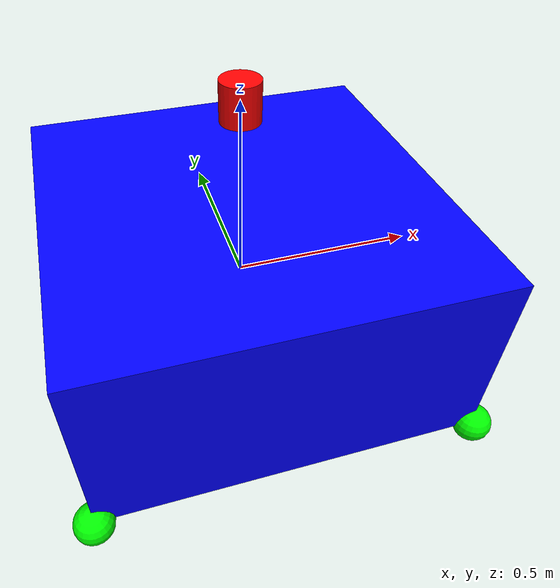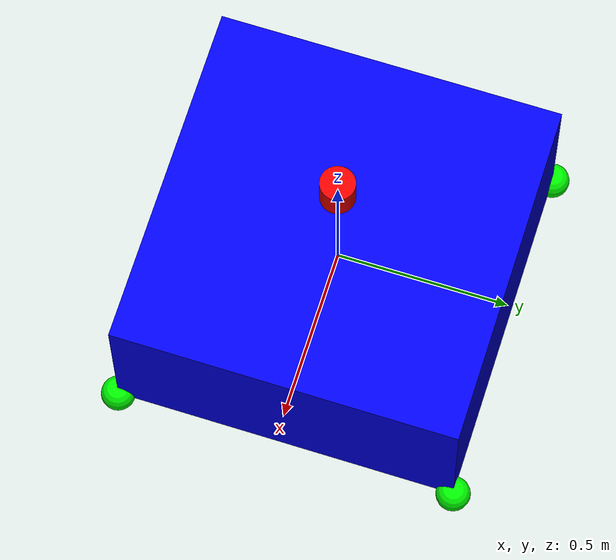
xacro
<?xml version="1.0" ?>
<!-- |    This document was autogenerated by xacro from model.xacro                    | -->
<!-- |    EDITING THIS FILE BY HAND IS NOT RECOMMENDED                                 | -->
<robot name="HolonomicUrdf">
  <link name="base_footprint"/>
  <link name="base_link">
    <inertial>
      <mass value="100"/>
      <origin rpy="0 0 0" xyz="0 0 0"/>
      <inertia ixx="10.416666666666668" ixy="0.0" ixz="0.0" iyy="10.416666666666668" iyz="0.0" izz="16.666666666666668"/>
    </inertial>
    <visual>
      <geometry>
        <box size="1.0 1.0 0.5"/>
      </geometry>
      <material name="blue">
        <color rgba="0.0 0.0 1.0 1.0"/>
      </material>
    </visual>
  </link>
  <joint name="base_joint" type="fixed">
    <parent link="base_footprint"/>
    <child link="base_link"/>
  </joint>
  <link name="wheel_base_link">
    <inertial>
      <mass value="0.01"/>
      <origin rpy="0 0 0" xyz="0 0 0"/>
      <inertia ixx="233333.33333333334" ixy="0.0" ixz="0.0" iyy="233333.33333333334" iyz="0.0" izz="450000.0"/>
    </inertial>
    <visual>
      <geometry>
        <cylinder length="0.1" radius="0.3"/>
      </geometry>
      <material name="red">
        <color rgba="1.0 0.0 0.0 1.0"/>
      </material>
    </visual>
  </link>
  <joint name="wheel_base_joint" type="continuous">
    <parent link="base_link"/>
    <child link="wheel_base_link"/>
    <origin rpy="0 0 0" xyz="0 0 0"/>
    <axis xyz="0 0 1"/>
  </joint>
  <link name="wheel_link">
    <inertial>
      <mass value="1e-07"/>
      <origin rpy="0 0 0" xyz="0 0 0"/>
      <inertia ixx="1.0000083333333336" ixy="0.0" ixz="0.0" iyy="1.0000083333333336" iyz="0.0" izz="2.0000000000000004"/>
    </inertial>
    <visual>
      <geometry>
        <cylinder length="0.001" radius="0.2"/>
      </geometry>
      <material name="red">
        <color rgba="1.0 0.0 0.0 1.0"/>
      </material>
    </visual>
    <collision>
      <geometry>
        <cylinder length="0.001" radius="0.2"/>
      </geometry>
      <origin rpy="0 0 0" xyz="0 0 0"/>
    </collision>
  </link>
  <joint name="wheel_joint" type="continuous">
    <parent link="wheel_base_link"/>
    <child link="wheel_link"/>
    <origin rpy="-1.57 0 0" xyz="0 0 -0.1"/>
    <axis xyz="0 0 1"/>
  </joint>
  <link name="caster1_link">
    <inertial>
      <mass value="0.3"/>
      <origin rpy="0 0 0" xyz="0 0 0"/>
      <inertia ixx="3000000.0" ixy="0.0" ixz="0.0" iyy="3000000.0" iyz="0.0" izz="3000000.0"/>
    </inertial>
    <visual>
      <geometry>
        <sphere radius="0.05"/>
      </geometry>
      <material name="green">
        <color rgba="0.0 1.0 0.0 1.0"/>
      </material>
    </visual>
    <collision>
      <geometry>
        <sphere radius="0.05"/>
      </geometry>
      <origin rpy="0 0 0" xyz="0 0 0"/>
    </collision>
  </link>
  <joint name="caster1_joint" type="fixed">
    <origin rpy="0 0 0" xyz="0.5000000000000001 0.5000000000000001 -0.25"/>
    <parent link="base_link"/>
    <child link="caster1_link"/>
  </joint>
  <link name="caster2_link">
    <inertial>
      <mass value="0.3"/>
      <origin rpy="0 0 0" xyz="0 0 0"/>
      <inertia ixx="3000000.0" ixy="0.0" ixz="0.0" iyy="3000000.0" iyz="0.0" izz="3000000.0"/>
    </inertial>
    <visual>
      <geometry>
        <sphere radius="0.05"/>
      </geometry>
      <material name="green">
        <color rgba="0.0 1.0 0.0 1.0"/>
      </material>
    </visual>
    <collision>
      <geometry>
        <sphere radius="0.05"/>
      </geometry>
      <origin rpy="0 0 0" xyz="0 0 0"/>
    </collision>
  </link>
  <joint name="caster2_joint" type="fixed">
    <origin rpy="0 0 0" xyz="-0.5000000000000001 0.5000000000000001 -0.25"/>
    <parent link="base_link"/>
    <child link="caster2_link"/>
  </joint>
  <link name="caster3_link">
    <inertial>
      <mass value="0.3"/>
      <origin rpy="0 0 0" xyz="0 0 0"/>
      <inertia ixx="3000000.0" ixy="0.0" ixz="0.0" iyy="3000000.0" iyz="0.0" izz="3000000.0"/>
    </inertial>
    <visual>
      <geometry>
        <sphere radius="0.05"/>
      </geometry>
      <material name="green">
        <color rgba="0.0 1.0 0.0 1.0"/>
      </material>
    </visual>
    <collision>
      <geometry>
        <sphere radius="0.05"/>
      </geometry>
      <origin rpy="0 0 0" xyz="0 0 0"/>
    </collision>
  </link>
  <joint name="caster3_joint" type="fixed">
    <origin rpy="0 0 0" xyz="-0.5000000000000001 -0.5000000000000001 -0.25"/>
    <parent link="base_link"/>
    <child link="caster3_link"/>
  </joint>
  <link name="caster4_link">
    <inertial>
      <mass value="0.3"/>
      <origin rpy="0 0 0" xyz="0 0 0"/>
      <inertia ixx="3000000.0" ixy="0.0" ixz="0.0" iyy="3000000.0" iyz="0.0" izz="3000000.0"/>
    </inertial>
    <visual>
      <geometry>
        <sphere radius="0.05"/>
      </geometry>
      <material name="green">
        <color rgba="0.0 1.0 0.0 1.0"/>
      </material>
    </visual>
    <collision>
      <geometry>
        <sphere radius="0.05"/>
      </geometry>
      <origin rpy="0 0 0" xyz="0 0 0"/>
    </collision>
  </link>
  <joint name="caster4_joint" type="fixed">
    <origin rpy="0 0 0" xyz="0.5000000000000001 -0.5000000000000001 -0.25"/>
    <parent link="base_link"/>
    <child link="caster4_link"/>
  </joint>
  <link name="base_lidar_link">
    <inertial>
      <mass value="0.01"/>
      <origin rpy="0 0 0" xyz="0 0 0"/>
      <inertia ixx="1.4583333333333337e-05" ixy="0.0" ixz="0.0" iyy="1.4583333333333337e-05" iyz="0.0" izz="1.2500000000000002e-05"/>
    </inertial>
    <visual>
      <geometry>
        <cylinder length="0.1" radius="0.05"/>
      </geometry>
      <material name="red">
        <color rgba="1.0 0.0 0.0 1.0"/>
      </material>
    </visual>
  </link>
  <joint name="base_lidar_joint" type="fixed">
    <parent link="base_link"/>
    <child link="base_lidar_link"/>
    <origin rpy="0 0 0" xyz="0 0 0.5"/>
  </joint>
  <gazebo reference="base_lidar_link">
    <sensor name="gpu_lidar" type="gpu_lidar">
      <topic>scan</topic>
      <ignition_frame_id>base_footprint</ignition_frame_id>
      <update_rate>10</update_rate>
      <ray>
        <scan>
          <horizontal>
            <samples>270</samples>
            <resolution>1</resolution>
            <min_angle>2.356194490192345</min_angle>
            <max_angle>-2.356194490192345</max_angle>
          </horizontal>
        </scan>
        <range>
          <min>0.1</min>
          <max>20</max>
        </range>
      </ray>
      <always_on>true</always_on>
      <visualize>true</visualize>
    </sensor>
  </gazebo>
  <gazebo>
    <!-- Global odometer -->
    <plugin filename="ignition-gazebo-odometry-publisher-system" name="ignition::gazebo::systems::OdometryPublisher">
      <odom_publish_frequency>50</odom_publish_frequency>
      <odom_topic>/odom</odom_topic>
      <odom_frame>odom</odom_frame>
      <robot_base_frame>base_footprint</robot_base_frame>
      <tf_topic>/odom/tf</tf_topic>
    </plugin>
    <!-- Joint state publisher -->
    <plugin filename="libignition-gazebo-joint-state-publisher-system.so" name="ignition::gazebo::systems::JointStatePublisher">
      <topic>joint_states</topic>
    </plugin>
    <plugin filename="libHolonomicPlugin.so" name="holonomic_sim::HolonomicPlugin">
      <wheel_joint>wheel_joint</wheel_joint>
      <base_joint>wheel_base_joint</base_joint>
    </plugin>
  </gazebo>
</robot>
